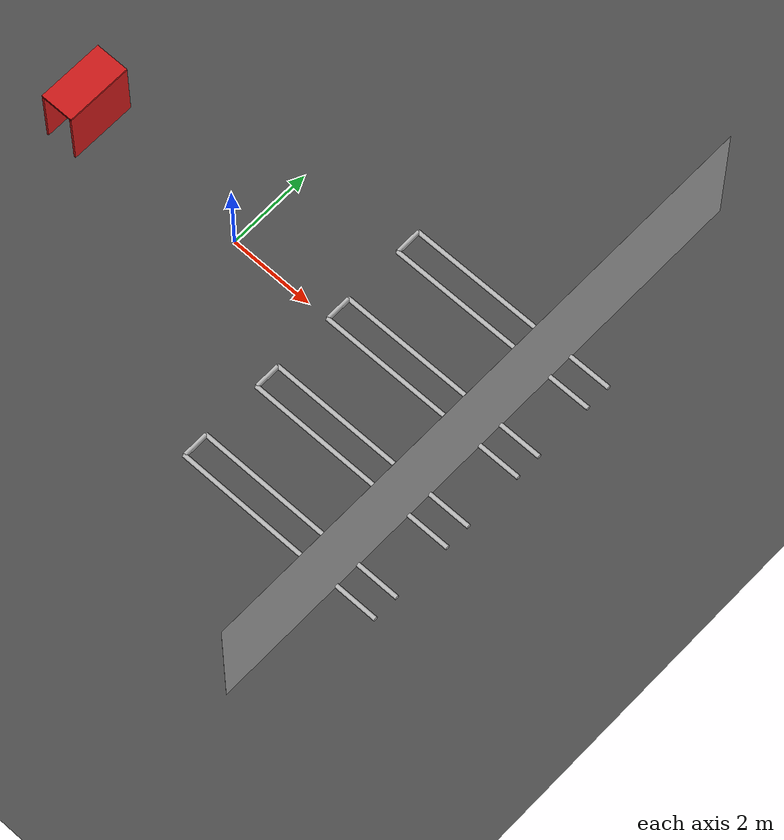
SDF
<sdf version="1.8">
 <world name="demo">
  <plugin filename="gz-sim-physics-system" name="gz::sim::systems::Physics"/>
  <plugin filename="gz-sim-sensors-system" name="gz::sim::systems::Sensors">
   <render_engine>ogre2</render_engine>
  </plugin>
  <plugin filename="gz-sim-scene-broadcaster-system" name="gz::sim::systems::SceneBroadcaster"/>
  <plugin filename="gz-sim-user-commands-system" name="gz::sim::systems::UserCommands"/>
  <plugin filename="BasicSystem" name="ros_gz_gazebo::BasicSystem"/>
  <plugin filename="FullSystem" name="ros_gz_gazebo::FullSystem"/>
  <light name="sun" type="directional">
   <pose>0 0 10 0 0 0</pose>
   <diffuse>0.8 0.8 0.8 1</diffuse>
   <specular>0.2 0.2 0.2 1</specular>
   <attenuation>
    <range>1000</range>
    <constant>0.9</constant>
    <linear>0.01</linear>
    <quadratic>0.001</quadratic>
   </attenuation>
   <direction>-0.5 0.1 -0.9</direction>
  </light>
  <model name="ground_plane">
   <static>true</static>
   <link name="link">
    <collision name="collision">
     <geometry><plane><normal>0 0 1</normal><size>20 20</size></plane></geometry>
    </collision>
    <visual name="visual">
     <geometry><plane><normal>0 0 1</normal><size>14 14</size></plane></geometry>
     <material>
      <script><uri>file://media/materials/scripts/gazebo.material</uri><name>Gazebo/DarkGray</name></script>
     </material>
    </visual>
   </link>
  </model>
  <model name="shed">
   <static>true</static>
   <link name="tunnel_link">
    <pose>-4 0 0 0 0 0</pose>
    <visual name="left_wall_visual">
     <pose>-0.375 0 0.75 0 0 0</pose>
     <geometry><box><size>0.05 1.56 1.5</size></box></geometry>
     <material><ambient>0.8 0.1 0.1 1</ambient><diffuse>0.8 0.1 0.1 1</diffuse></material>
    </visual>
    <collision name="left_wall_collision">
     <pose>-0.375 0 0.75 0 0 0</pose>
     <geometry><box><size>0.05 1.56 1.5</size></box></geometry>
    </collision>
    <visual name="right_wall_visual">
     <pose>0.375 0 0.75 0 0 0</pose>
     <geometry><box><size>0.05 1.56 1.5</size></box></geometry>
     <material><ambient>0.8 0.1 0.1 1</ambient><diffuse>0.8 0.1 0.1 1</diffuse></material>
    </visual>
    <collision name="right_wall_collision">
     <pose>0.375 0 0.75 0 0 0</pose>
     <geometry><box><size>0.05 1.56 1.5</size></box></geometry>
    </collision>
    <visual name="ceiling_visual">
     <pose>0 0 1.5 0 0 0</pose>
     <geometry><box><size>0.8 1.56 0.05</size></box></geometry>
     <material><ambient>0.8 0.1 0.1 1</ambient><diffuse>0.8 0.1 0.1 1</diffuse></material>
    </visual>
    <collision name="ceiling_collision">
     <pose>0 0 1.5 0 0 0</pose>
     <geometry><box><size>0.8 1.56 0.05</size></box></geometry>
    </collision>
   </link>
  </model>
  <model name="combined_pipe_rectangle">
   <pose>5 0 0.051 0 1.57 0</pose>
   <static>true</static>
   <link name="rail1">
    <collision name="rail1_collision">
     <geometry><cylinder><radius>0.051</radius><length>5</length></cylinder></geometry>
    </collision>
    <visual name="rail1_visual">
     <geometry><cylinder><radius>0.051</radius><length>5</length></cylinder></geometry>
    </visual>
   </link>
   <link name="rail2">
    <collision name="rail2_collision">
     <geometry><cylinder><radius>0.051</radius><length>5</length></cylinder></geometry>
    </collision>
    <visual name="rail2_visual">
     <geometry><cylinder><radius>0.051</radius><length>5</length></cylinder></geometry>
    </visual>
    <pose>0 0.596 0 0 0 0</pose>
   </link>
   <link name="start_pipe">
    <collision name="start_pipe_collision">
     <geometry><cylinder><radius>0.051</radius><length>0.596</length></cylinder></geometry>
    </collision>
    <visual name="start_pipe_visual">
     <geometry><cylinder><radius>0.051</radius><length>0.596</length></cylinder></geometry>
    </visual>
    <pose>0 0.298 -2.485 1.57 0 0</pose>
   </link>
  </model>
  <model name="combined_pipe_rectangle2">
   <pose>5 -2 0.051 0 1.57 0</pose>
   <static>true</static>
   <link name="rail1">
    <collision name="rail1_collision">
     <geometry><cylinder><radius>0.051</radius><length>5</length></cylinder></geometry>
    </collision>
    <visual name="rail1_visual">
     <geometry><cylinder><radius>0.051</radius><length>5</length></cylinder></geometry>
    </visual>
   </link>
   <link name="rail2">
    <collision name="rail2_collision">
     <geometry><cylinder><radius>0.051</radius><length>5</length></cylinder></geometry>
    </collision>
    <visual name="rail2_visual">
     <geometry><cylinder><radius>0.051</radius><length>5</length></cylinder></geometry>
    </visual>
    <pose>0 0.596 0 0 0 0</pose>
   </link>
   <link name="start_pipe">
    <collision name="start_pipe_collision">
     <geometry><cylinder><radius>0.051</radius><length>0.596</length></cylinder></geometry>
    </collision>
    <visual name="start_pipe_visual">
     <geometry><cylinder><radius>0.051</radius><length>0.596</length></cylinder></geometry>
    </visual>
    <pose>0 0.298 -2.485 1.57 0 0</pose>
   </link>
  </model>
  <model name="combined_pipe_rectangle3">
   <pose>5 -4 0.051 0 1.57 0</pose>
   <static>true</static>
   <link name="rail1">
    <collision name="rail1_collision">
     <geometry><cylinder><radius>0.051</radius><length>5</length></cylinder></geometry>
    </collision>
    <visual name="rail1_visual">
     <geometry><cylinder><radius>0.051</radius><length>5</length></cylinder></geometry>
    </visual>
   </link>
   <link name="rail2">
    <collision name="rail2_collision">
     <geometry><cylinder><radius>0.051</radius><length>5</length></cylinder></geometry>
    </collision>
    <visual name="rail2_visual">
     <geometry><cylinder><radius>0.051</radius><length>5</length></cylinder></geometry>
    </visual>
    <pose>0 0.596 0 0 0 0</pose>
   </link>
   <link name="start_pipe">
    <collision name="start_pipe_collision">
     <geometry><cylinder><radius>0.051</radius><length>0.596</length></cylinder></geometry>
    </collision>
    <visual name="start_pipe_visual">
     <geometry><cylinder><radius>0.051</radius><length>0.596</length></cylinder></geometry>
    </visual>
    <pose>0 0.298 -2.485 1.57 0 0</pose>
   </link>
  </model>
  <model name="combined_pipe_rectangle4">
   <pose>5 2 0.051 0 1.57 0</pose>
   <static>true</static>
   <link name="rail1">
    <collision name="rail1_collision">
     <geometry><cylinder><radius>0.051</radius><length>5</length></cylinder></geometry>
    </collision>
    <visual name="rail1_visual">
     <geometry><cylinder><radius>0.051</radius><length>5</length></cylinder></geometry>
    </visual>
   </link>
   <link name="rail2">
    <collision name="rail2_collision">
     <geometry><cylinder><radius>0.051</radius><length>5</length></cylinder></geometry>
    </collision>
    <visual name="rail2_visual">
     <geometry><cylinder><radius>0.051</radius><length>5</length></cylinder></geometry>
    </visual>
    <pose>0 0.596 0 0 0 0</pose>
   </link>
   <link name="start_pipe">
    <collision name="start_pipe_collision">
     <geometry><cylinder><radius>0.051</radius><length>0.596</length></cylinder></geometry>
    </collision>
    <visual name="start_pipe_visual">
     <geometry><cylinder><radius>0.051</radius><length>0.596</length></cylinder></geometry>
    </visual>
    <pose>0 0.298 -2.485 1.57 0 0</pose>
   </link>
  </model>
  <model name="greenhouse_wall">
   <static>true</static>
   <link name="link">
    <collision name="collision">
     <geometry><plane><normal>0 0 1</normal><size>3 14</size></plane></geometry>
    </collision>
    <visual name="visual">
     <geometry><plane><normal>0 0 1</normal><size>3 14</size></plane></geometry>
     <material>
      <script><uri>file://media/materials/scripts/gazebo.material</uri><name>Gazebo/Grey</name></script>
     </material>
    </visual>
    <pose>6.5 0 1.5 0 1.57 3.14</pose>
   </link>
  </model>
 </world>
</sdf>
